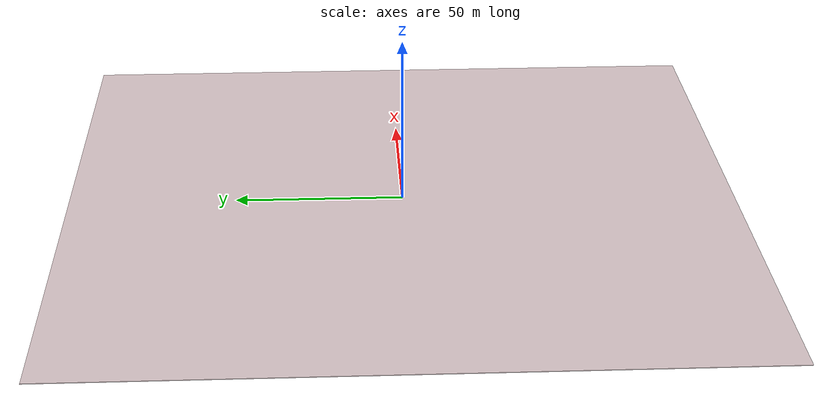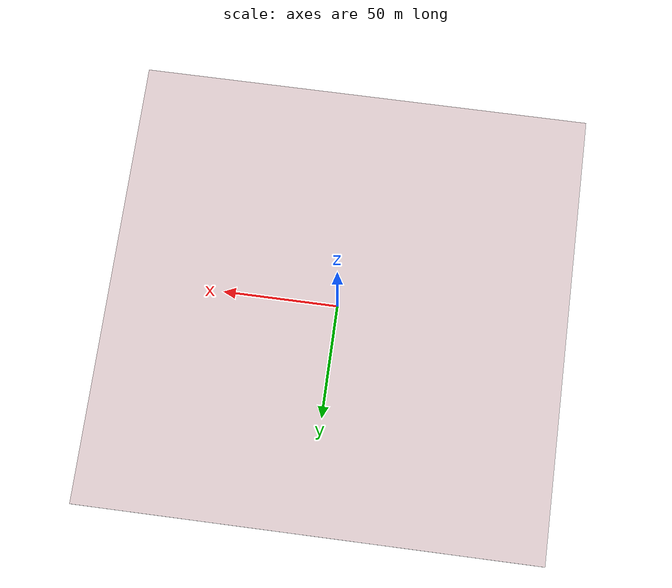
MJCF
<mujoco>
            <compiler angle="radian" autolimits="true" />
            <compiler meshdir="asset" texturedir="asset" assetdir="asset" />
            <option gravity="0 0 -9.81" />
            <default class="main">
            <geom friction="0 0 0" solimp="0.9 1 0.001 0.01 20" solref="0.02 1" condim="1" />
        </default>

        <visual>
            <headlight diffuse="0.7 0.7 0.7" ambient="0.5 0.5 0.5" />
            <global offwidth="1920" offheight="1080" />
        </visual>

        <asset>
            <texture type="skybox" builtin="gradient" rgb1="0 0.5 0.7" rgb2="0 0 0" width="512" height="512" />
            <texture type="2d" name="checks1" builtin="checker" rgb1="1 1 1" rgb2="0 0 0" width="256" height="256" />
            <material name="test_color" texture="checks1" texuniform="true" texrepeat="2 2" />
            <material name="reflectance" reflectance=".4" />
            <texture name="grid" type="2d" builtin="checker" width="512" height="512" rgb1="1.0 0.6235 0.1098" rgb2="1.0 0.749 0.4118" />
            <texture name="white-texture-background" type="2d" file="/home/aryansatpathy/DevStuff/cmu/PHO/sim/geom_sources/fixed_sources/rocket/rocket.white-texture-background.png" content_type="image/png" />
            <material name="pulley" texture="grid" texrepeat="2 2" texuniform="true" />

        </asset>
        <worldbody><body name="projectileentity_0.ball" pos="0.0 0.0 1.87" quat="1.0 0.0 0.0 0.0"><geom name="projectileentity_0.ball.geom" type="sphere" pos="0 0 0" size="0.1" material="pulley" rgba="0.8 0.8 0.8 1.0" mass="1.0" quat="0 0 0 1" contype="1" conaffinity="1" />
<site name="projectileentity_0.ball.site" pos="0 0 0" quat="1.0 -0.0 -0.0 -0.0" />
<site name="projectileentity_0.ball.center_site" pos="0 0 0" quat="1.0 -0.0 -0.0 -0.0" />
<joint name="projectileentity_0.ball.joint" type="free" axis="0 0 0" pos="0 0 0" />
</body>
<body name="projectileentity_0.plane" pos="0.0 0.0 0.0" quat="1.0 0.0 0.0 0.0"><geom name="projectileentity_0.plane.geom" type="box" pos="0 0 0" size="100 100 0.1" material="reflectance" rgba="0.82745098 0.75686275 0.76470588 1" mass="1.0" quat="0 0 0 1" condim="1" contype="1" conaffinity="1" />
<site name="projectileentity_0.plane.sensor" pos="0 0 0" quat="1.0 -0.0 -0.0 -0.0" />
<site name="projectileentity_0.plane.left" pos="-100.05 0 0.2" quat="1.0 -0.0 -0.0 -0.0" />
<site name="projectileentity_0.plane.right" pos="100.05 0 0.2" quat="1.0 -0.0 -0.0 -0.0" />
</body>
</worldbody><sensor>

        </sensor>
        <custom>
            <text name="coefficient_restitution" data="(projectileentity_0.ball, projectileentity_0.plane, 1.0)" />

        </custom>
        <contact>
            <pair geom1="projectileentity_0.ball.geom" geom2="projectileentity_0.plane.geom" solref="-2500 0" />

        </contact>
        <actuator>

        </actuator>
    </mujoco>
